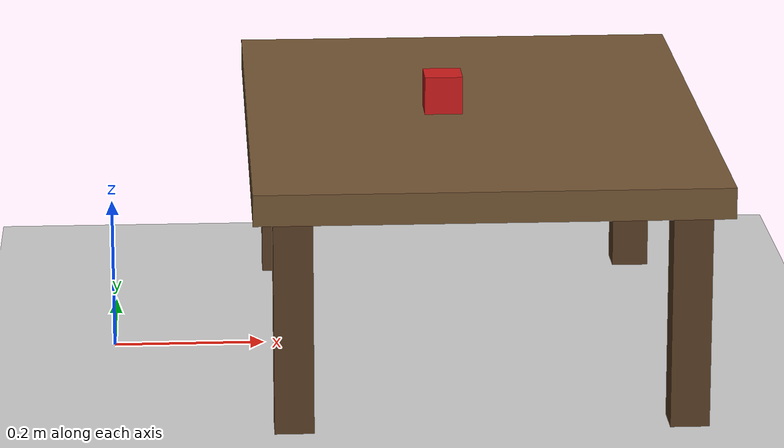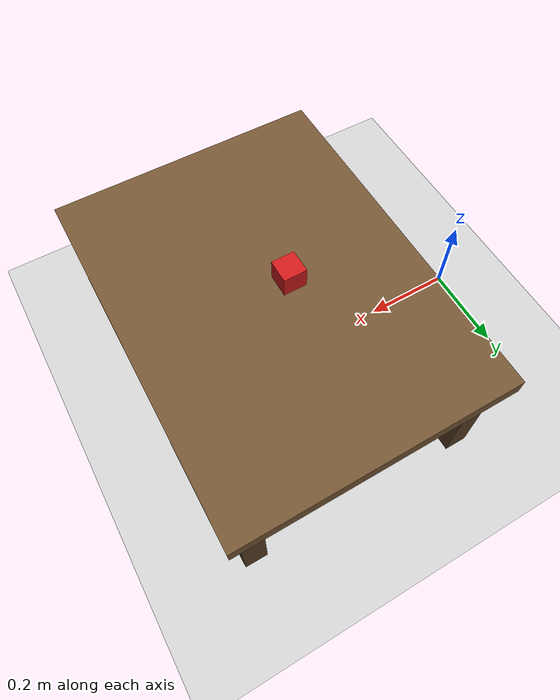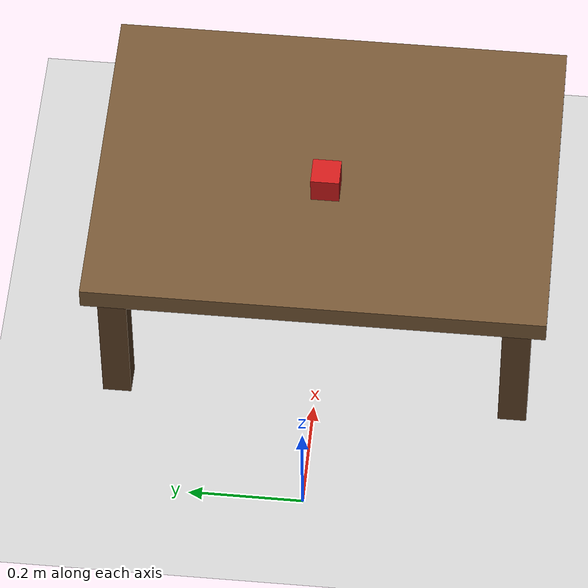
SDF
<?xml version="1.0" ?>
<sdf version="1.6">
  <world name="arm620_grasp">
    <gravity>0 0 -9.81</gravity>

    <include>
      <uri>model://ground_plane</uri>
    </include>

    <include>
      <uri>model://sun</uri>
    </include>

    <model name="pickup_table">
      <static>true</static>
      <pose>0.48 0.0 0.0 0 0 0</pose>
      <link name="table_top">
        <pose>0 0 0.30 0 0 0</pose>
        <collision name="table_top_collision">
          <geometry>
            <box>
              <size>0.60 0.80 0.04</size>
            </box>
          </geometry>
          <surface>
            <friction>
              <ode>
                <mu>1.0</mu>
                <mu2>1.0</mu2>
              </ode>
            </friction>
            <contact>
              <ode>
                <kp>1000000.0</kp>
                <kd>1.0</kd>
                <max_vel>0.1</max_vel>
              </ode>
            </contact>
          </surface>
        </collision>
        <visual name="table_top_visual">
          <geometry>
            <box>
              <size>0.60 0.80 0.04</size>
            </box>
          </geometry>
          <material>
            <ambient>0.35 0.25 0.16 1.0</ambient>
            <diffuse>0.45 0.33 0.20 1.0</diffuse>
          </material>
        </visual>
      </link>

      <link name="table_leg_fl">
        <pose>0.25 0.35 0.14 0 0 0</pose>
        <collision name="table_leg_fl_collision">
          <geometry>
            <box>
              <size>0.05 0.05 0.28</size>
            </box>
          </geometry>
        </collision>
        <visual name="table_leg_fl_visual">
          <geometry>
            <box>
              <size>0.05 0.05 0.28</size>
            </box>
          </geometry>
          <material>
            <ambient>0.28 0.20 0.12 1.0</ambient>
            <diffuse>0.35 0.24 0.14 1.0</diffuse>
          </material>
        </visual>
      </link>

      <link name="table_leg_fr">
        <pose>0.25 -0.35 0.14 0 0 0</pose>
        <collision name="table_leg_fr_collision">
          <geometry>
            <box>
              <size>0.05 0.05 0.28</size>
            </box>
          </geometry>
        </collision>
        <visual name="table_leg_fr_visual">
          <geometry>
            <box>
              <size>0.05 0.05 0.28</size>
            </box>
          </geometry>
          <material>
            <ambient>0.28 0.20 0.12 1.0</ambient>
            <diffuse>0.35 0.24 0.14 1.0</diffuse>
          </material>
        </visual>
      </link>

      <link name="table_leg_bl">
        <pose>-0.25 0.35 0.14 0 0 0</pose>
        <collision name="table_leg_bl_collision">
          <geometry>
            <box>
              <size>0.05 0.05 0.28</size>
            </box>
          </geometry>
        </collision>
        <visual name="table_leg_bl_visual">
          <geometry>
            <box>
              <size>0.05 0.05 0.28</size>
            </box>
          </geometry>
          <material>
            <ambient>0.28 0.20 0.12 1.0</ambient>
            <diffuse>0.35 0.24 0.14 1.0</diffuse>
          </material>
        </visual>
      </link>

      <link name="table_leg_br">
        <pose>-0.25 -0.35 0.14 0 0 0</pose>
        <collision name="table_leg_br_collision">
          <geometry>
            <box>
              <size>0.05 0.05 0.28</size>
            </box>
          </geometry>
        </collision>
        <visual name="table_leg_br_visual">
          <geometry>
            <box>
              <size>0.05 0.05 0.28</size>
            </box>
          </geometry>
          <material>
            <ambient>0.28 0.20 0.12 1.0</ambient>
            <diffuse>0.35 0.24 0.14 1.0</diffuse>
          </material>
        </visual>
      </link>
    </model>

    <model name="grasp_cube">
      <static>false</static>
      <pose>0.44 0.0 0.345 0 0 0</pose>
      <link name="cube_link">
        <inertial>
          <mass>0.08</mass>
          <inertia>
            <ixx>0.000033</ixx>
            <ixy>0.0</ixy>
            <ixz>0.0</ixz>
            <iyy>0.000033</iyy>
            <iyz>0.0</iyz>
            <izz>0.000033</izz>
          </inertia>
        </inertial>
        <collision name="cube_collision">
          <geometry>
            <box>
              <size>0.05 0.05 0.05</size>
            </box>
          </geometry>
          <surface>
            <friction>
              <ode>
                <mu>1.2</mu>
                <mu2>1.2</mu2>
              </ode>
            </friction>
            <contact>
              <ode>
                <kp>1000000.0</kp>
                <kd>1.0</kd>
                <max_vel>0.1</max_vel>
              </ode>
            </contact>
          </surface>
        </collision>
        <visual name="cube_visual">
          <geometry>
            <box>
              <size>0.05 0.05 0.05</size>
            </box>
          </geometry>
          <material>
            <ambient>0.8 0.1 0.1 1.0</ambient>
            <diffuse>0.8 0.1 0.1 1.0</diffuse>
          </material>
        </visual>
      </link>
    </model>
  </world>
</sdf>
